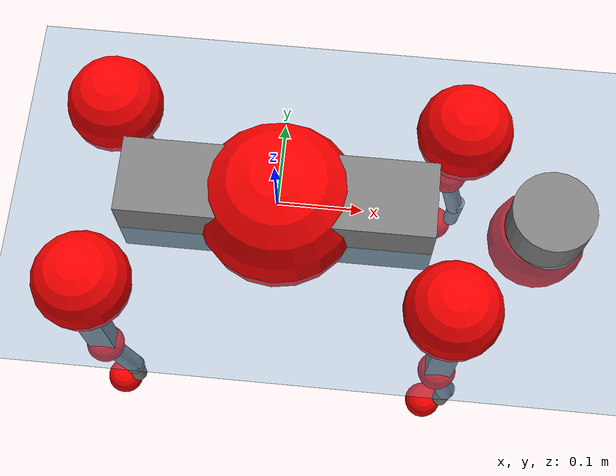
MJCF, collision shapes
<mujoco model="go2">
  <compiler angle="radian" assetdir="assets" balanceinertia="true" inertiafromgeom="false"/>

  <option timestep="0.005" density="1.2" viscosity="2e-05"/>

  <size nkey="1"/>

  <visual>
    <quality shadowsize="8192"/>
    <map shadowclip="0.5"/>
  </visual>

  <default>
    <default class="/">
      <geom contype="0" conaffinity="0" group="1" solref="-1000 -80"/>
      <site size="0.01 0.005 0.005" group="5"/>
      <general forcelimited="true" biastype="affine" gainprm="20" biasprm="0 -20 -0.5"/>
      <default class="go2">
        <joint armature="0.01" damping="0.01" frictionloss="0.2"/>
        <geom condim="1" margin="0.001"/>
        <default class="visual">
          <geom type="mesh" group="2"/>
        </default>
        <default class="collision">
          <geom group="3"/>
          <default class="foot">
            <geom size="0.022 0 0" condim="6" priority="1" friction="0.8 0.02 0.01" solimp="0.015 1 0.022"/>
          </default>
        </default>
        <default class="reward_collision_sphere">
          <geom group="5" rgba="1 0 0 1"/>
        </default>
      </default>
    </default>
  </default>

  <asset>
    <texture type="skybox" colorspace="auto" name="//unnamed_texture_0" builtin="gradient" rgb1="0.95 0.95 0.95" rgb2="0.95 0.95 0.95" width="100" height="600"/>
    <texture type="2d" colorspace="auto" name="texplane" builtin="checker" rgb1="0.345 0.575 0.748" rgb2="0.345 0.575 0.748" markrgb="1 1 1" width="512" height="512"/>
    <material name="MatPlane" class="/" texture="texplane" texuniform="true" texrepeat="2 2" specular="0.9"/>
    <material name="metal" class="/" rgba="0.9 0.95 0.95 1"/>
    <material name="black" class="/" rgba="0 0 0 1"/>
    <material name="white" class="/"/>
    <material name="gray" class="/" rgba="0.671705 0.692426 0.77427 1"/>
    <mesh name="base_0" class="/" file="base_0.obj"/>
    <mesh name="base_1" class="/" file="base_1.obj"/>
    <mesh name="base_2" class="/" file="base_2.obj"/>
    <mesh name="base_3" class="/" file="base_3.obj"/>
    <mesh name="base_4" class="/" file="base_4.obj"/>
    <mesh name="hip_0" class="/" file="hip_0.obj"/>
    <mesh name="hip_1" class="/" file="hip_1.obj"/>
    <mesh name="thigh_0" class="/" file="thigh_0.obj"/>
    <mesh name="thigh_1" class="/" file="thigh_1.obj"/>
    <mesh name="thigh_mirror_0" class="/" file="thigh_mirror_0.obj"/>
    <mesh name="thigh_mirror_1" class="/" file="thigh_mirror_1.obj"/>
    <mesh name="calf_0" class="/" file="calf_0.obj"/>
    <mesh name="calf_1" class="/" file="calf_1.obj"/>
    <mesh name="calf_mirror_0" class="/" file="calf_mirror_0.obj"/>
    <mesh name="calf_mirror_1" class="/" file="calf_mirror_1.obj"/>
    <mesh name="foot" class="/" file="foot.obj"/>
  </asset>

  <worldbody>
    <geom name="floor" class="/" size="100 100 0.125" type="plane" group="0" material="MatPlane"/>
    <light name="toplight_shadow" class="/" pos="0 0 5" dir="0.0990148 0.0990148 -0.990148" type="directional" ambient="0.04 0.04 0.04" diffuse="0.55 0.55 0.55" specular="0.12 0.12 0.12"/>
    <light name="toplight_fill" class="/" pos="0 0 5" dir="0.0990148 0.0990148 -0.990148" type="directional" castshadow="false" ambient="0.04 0.04 0.04" diffuse="0.3 0.3 0.3" specular="0.08 0.08 0.08"/>
    <body name="trunk" childclass="go2" pos="0.00198551 -0.000996201 -0.000523379" quat="1 0.000296784 -9.57427e-06 0.000183229">
      <inertial pos="0.0229829 -0.00061561 -0.00463979" quat="-0.000403309 0.713268 -0.00353692 0.700883" mass="6.17059" diaginertia="0.176793 0.0849424 0.00981519"/>
      <joint name="//unnamed_joint_0" type="free" armature="0" damping="0" frictionloss="0"/>
      <geom name="//unnamed_geom_1" class="visual" material="black" mesh="base_0"/>
      <geom name="//unnamed_geom_2" class="visual" material="black" mesh="base_1"/>
      <geom name="//unnamed_geom_3" class="visual" material="black" mesh="base_2"/>
      <geom name="//unnamed_geom_4" class="visual" material="white" mesh="base_3"/>
      <geom name="//unnamed_geom_5" class="visual" material="gray" mesh="base_4"/>
      <geom name="trunk_1" class="collision" size="0.1816 0.0451345 0.0550303" type="box"/>
      <geom name="trunk_2" class="collision" size="0.0482722 0.043445" pos="0.312342 0 0.00832584" type="cylinder"/>
      <geom name="trunk_3" class="collision" size="0.0453759" pos="0.321109 0 -0.049955"/>
      <geom name="//unnamed_geom_9" class="reward_collision_sphere" size="0.0965445"/>
      <geom name="//unnamed_geom_10" class="reward_collision_sphere" size="0.0579267" pos="0.306862 0 -0.0374663"/>
      <site name="imu" pos="-0.0324339 -0.00131457 0.0233192" size="0.00965445"/>
      <camera name="track" pos="0 -1.93563 0" quat="0.707107 0.707107 0 0" mode="trackcom"/>
      <camera name="ego_camera" pos="0.341932 0 0.0374663" quat="-0.5 -0.5 0.5 0.5"/>
      <body name="FL_hip" pos="0.212329 0.0456643 0.000508229" quat="1 -0.000459398 0.000585717 3.52124e-05">
        <inertial pos="-0.00799927 0.00297366 0.000117563" quat="0.497013 0.499219 0.505484 0.498241" mass="0.613204" diaginertia="0.00140344 0.000500069 0.000190853"/>
        <joint name="FL_hip_joint" pos="0 0 0" axis="0.999897 0.0135715 -0.00475406" range="-1.06061 1.04967" armature="0.00848796" damping="0.00671382" frictionloss="0.187298"/>
        <geom name="//unnamed_geom_11" class="visual" material="metal" mesh="hip_0"/>
        <geom name="//unnamed_geom_12" class="visual" material="gray" mesh="hip_1"/>
        <geom name="//unnamed_geom_13" class="collision" size="0.0444104 0.0193089" pos="0 0.0774251 0" quat="0.707107 0.707107 0 0" type="cylinder"/>
        <geom name="//unnamed_geom_14" class="reward_collision_sphere" size="0.0579267" pos="0 0.067747 0"/>
        <body name="FL_thigh" pos="-0.000998495 0.0929188 0.000836047" quat="1 0.00023389 -0.000236406 6.92669e-05">
          <inertial pos="-0.00479356 -0.0213737 -0.029522" quat="0.831136 0.0823252 -0.0200701 0.549575" mass="1.05421" diaginertia="0.00951738 0.00502548 0.000356603"/>
          <joint name="FL_thigh_joint" pos="0 0 0" axis="0.00106771 0.999966 -0.00822295" range="-1.58898 3.49127" armature="0.0104737" damping="0.00287735" frictionloss="0.194197"/>
          <geom name="//unnamed_geom_15" class="visual" material="metal" mesh="thigh_0"/>
          <geom name="//unnamed_geom_16" class="visual" material="gray" mesh="thigh_1"/>
          <geom name="//unnamed_geom_17" class="collision" size="0.10282 0.0118267 0.0164126" pos="0 0 -0.0886701" quat="0.707107 0 0.707107 0" type="box"/>
          <body name="FL_calf" pos="-0.000408877 -0.00292524 -0.177435" quat="1 0.000365925 -0.000161224 -2.18286e-05">
            <inertial pos="0.00652357 -0.000167131 -0.117817" quat="0.706498 0.0101495 -0.000341576 0.707642" mass="0.217569" diaginertia="0.0023248 0.00124423 2.08343e-05"/>
            <joint name="FL_calf_joint" pos="0 0 0" axis="-0.0120667 0.999926 -0.00136835" stiffness="0.00275836" range="-2.72065 -0.839272" armature="0.00962886" damping="0.000132799" frictionloss="0.198384"/>
            <geom name="//unnamed_geom_18" class="visual" material="gray" mesh="calf_0"/>
            <geom name="//unnamed_geom_19" class="visual" material="black" mesh="calf_1"/>
            <geom name="FL_calf0" class="collision" size="0.0115853 0.0579267" pos="0.00876749 0 -0.049955" quat="0.994493 0 -0.104807 0" type="cylinder"/>
            <geom name="//unnamed_geom_21" class="collision" size="0.0106199 0.0313769" pos="0.0219187 0 -0.123222" quat="0.999688 0 0.0249974 0" type="cylinder"/>
            <geom name="//unnamed_geom_22" class="visual" pos="0 0 -0.17734" quat="1 0 0 0" material="black" mesh="foot"/>
            <geom name="FL_foot" class="foot" size="0.0188501" pos="-0.00219187 0 -0.17734"/>
            <geom name="//unnamed_geom_24" class="reward_collision_sphere" size="0.0241361"/>
            <geom name="//unnamed_geom_25" class="reward_collision_sphere" size="0.0241361" pos="-0.00219187 0 -0.17734"/>
            <site name="FL_foot" class="foot" pos="-0.00219187 0 -0.17734" size="0.00965445"/>
          </body>
        </body>
      </body>
      <body name="FR_hip" pos="0.210205 -0.042183 -0.00156523" quat="1 4.60171e-05 -2.27575e-05 -6.64874e-05">
        <inertial pos="-0.00328837 -0.00275263 -0.00261351" quat="0.498779 0.505321 0.498926 0.496934" mass="0.629414" diaginertia="0.00143058 0.000517967 0.000197313"/>
        <joint name="FR_hip_joint" pos="0 0 0" axis="0.99997 -0.00327973 0.00705478" stiffness="0.0026075" range="-1.09417 1.06018" armature="0.00971803" damping="0.0148184" frictionloss="0.177492"/>
        <geom name="//unnamed_geom_26" class="visual" pos="0 1.17807e-09 5.05298e-08" quat="4.63268e-05 1 0 0" material="metal" mesh="hip_0"/>
        <geom name="//unnamed_geom_27" class="visual" pos="0 1.90979e-09 -1.2498e-07" quat="4.63268e-05 1 0 0" material="gray" mesh="hip_1"/>
        <geom name="//unnamed_geom_28" class="collision" size="0.0444104 0.0193089" pos="0 -0.0774251 0" quat="0.707107 0.707107 0 0" type="cylinder"/>
        <geom name="//unnamed_geom_29" class="reward_collision_sphere" size="0.0579267" pos="0 -0.067747 0"/>
        <body name="FR_thigh" pos="0.00070438 -0.0928554 0.000458879" quat="1 7.65177e-06 5.51587e-06 5.1374e-07">
          <inertial pos="-0.00307695 0.0242832 -0.0280449" quat="0.551631 -0.0200079 0.084764 0.829529" mass="1.02279" diaginertia="0.00936463 0.00489766 0.00034684"/>
          <joint name="FR_thigh_joint" pos="0 0 0" axis="-0.00137764 -0.999999 0.000962995" range="-3.49949 1.55697" armature="0.0101331" damping="0.00944081" frictionloss="0.190303"/>
          <geom name="//unnamed_geom_30" class="visual" material="metal" mesh="thigh_mirror_0"/>
          <geom name="//unnamed_geom_31" class="visual" material="gray" mesh="thigh_mirror_1"/>
          <geom name="//unnamed_geom_32" class="collision" size="0.10282 0.0118267 0.0164126" pos="0 0 -0.0886701" quat="0.707107 0 0.707107 0" type="box"/>
          <body name="FR_calf" pos="-0.000331143 -0.000779734 -0.175557" quat="0.999999 0.00111935 -2.53021e-06 -0.000450423">
            <inertial pos="0.00947117 0.000419113 -0.11645" quat="0.70345 -0.00391081 0.001021 0.710733" mass="0.212406" diaginertia="0.00233777 0.00126843 2.18787e-05"/>
            <joint name="FR_calf_joint" pos="0 0 0" axis="0.00263044 -0.999991 -0.00339307" stiffness="0.00437228" range="0.789057 2.71386" armature="0.00979673" damping="0.0195411" frictionloss="0.211518"/>
            <geom name="//unnamed_geom_33" class="visual" material="gray" mesh="calf_mirror_0"/>
            <geom name="//unnamed_geom_34" class="visual" material="black" mesh="calf_mirror_1"/>
            <geom name="FR_calf0" class="collision" size="0.0125508 0.0579267" pos="0.0109594 0 -0.049955" quat="0.995004 0 -0.0998334 0" type="cylinder"/>
            <geom name="//unnamed_geom_36" class="collision" size="0.0106199 0.0313769" pos="0.0219187 0 -0.123222" quat="0.999688 0 0.0249974 0" type="cylinder"/>
            <geom name="//unnamed_geom_37" class="visual" pos="0 0 -0.17734" quat="1 0 0 0" material="black" mesh="foot"/>
            <geom name="FR_foot" class="foot" size="0.0218128" pos="-0.00219187 0 -0.17734"/>
            <geom name="//unnamed_geom_39" class="reward_collision_sphere" size="0.0241361"/>
            <geom name="//unnamed_geom_40" class="reward_collision_sphere" size="0.0241361" pos="-0.00219187 0 -0.17734"/>
            <site name="FR_foot" class="foot" pos="-0.00219187 0 -0.17734" size="0.00965445"/>
          </body>
        </body>
      </body>
      <body name="RL_hip" pos="-0.209646 0.0439015 0.00118319" quat="1 -3.6058e-05 -4.00561e-05 1.37906e-05">
        <inertial pos="0.00818348 -0.000354892 -0.000295858" quat="0.505811 0.505485 0.494205 0.494371" mass="0.614873" diaginertia="0.00141222 0.000506134 0.000187791"/>
        <joint name="RL_hip_joint" pos="0 0 0" axis="-0.999947 0.00947417 -0.00410955" stiffness="0.000787473" range="-1.0351 1.02422" armature="0.00969949" damping="0.00735118" frictionloss="0.203203"/>
        <geom name="//unnamed_geom_41" class="visual" pos="-2.29422e-09 0 -4.4972e-07" quat="4.63268e-05 0 1 0" material="metal" mesh="hip_0"/>
        <geom name="//unnamed_geom_42" class="visual" pos="-3.71921e-09 0 -3.98838e-07" quat="4.63268e-05 0 1 0" material="gray" mesh="hip_1"/>
        <geom name="//unnamed_geom_43" class="collision" size="0.0444104 0.0193089" pos="0 0.0774251 0" quat="0.707107 0.707107 0 0" type="cylinder"/>
        <geom name="//unnamed_geom_44" class="reward_collision_sphere" size="0.0579267" pos="0 0.067747 0"/>
        <body name="RL_thigh" pos="-2.07121e-05 0.0915699 0.000461892" quat="1 -0.000426356 -0.000192346 0.000151882">
          <inertial pos="-0.00447471 -0.0190423 -0.0268076" quat="0.831671 0.0873947 -0.0164946 0.548099" mass="1.04168" diaginertia="0.00944167 0.00504174 0.000344214"/>
          <joint name="RL_thigh_joint" pos="0 0 0" axis="-0.00341151 0.999969 -0.00709528" range="-0.511758 4.53729" armature="0.0107547" damping="0.00264823" frictionloss="0.209322"/>
          <geom name="//unnamed_geom_45" class="visual" material="metal" mesh="thigh_0"/>
          <geom name="//unnamed_geom_46" class="visual" material="gray" mesh="thigh_1"/>
          <geom name="//unnamed_geom_47" class="collision" size="0.10282 0.0118267 0.0164126" pos="0 0 -0.0886701" quat="0.707107 0 0.707107 0" type="box"/>
          <body name="RL_calf" pos="-0.000600881 0.00134465 -0.179822" quat="0.999999 -0.000212256 0.000697223 0.000926847">
            <inertial pos="0.00749574 -0.000335639 -0.115113" quat="0.711176 0.000171321 -0.00435567 0.703001" mass="0.211064" diaginertia="0.0023556 0.00125261 2.1191e-05"/>
            <joint name="RL_calf_joint" pos="0 0 0" axis="0.00207376 0.999997 0.00137689" stiffness="0.000604183" range="-2.73356 -0.844965" armature="0.00934936" damping="0.00867837" frictionloss="0.180975"/>
            <geom name="//unnamed_geom_48" class="visual" material="gray" mesh="calf_0"/>
            <geom name="//unnamed_geom_49" class="visual" material="black" mesh="calf_1"/>
            <geom name="RL_calf0" class="collision" size="0.0125508 0.0579267" pos="0.0109594 0 -0.049955" quat="0.995004 0 -0.0998334 0" type="cylinder"/>
            <geom name="//unnamed_geom_51" class="collision" size="0.0106199 0.0313769" pos="0.0219187 0 -0.123222" quat="0.999688 0 0.0249974 0" type="cylinder"/>
            <geom name="//unnamed_geom_52" class="visual" pos="0 0 -0.17734" quat="1 0 0 0" material="black" mesh="foot"/>
            <geom name="RL_foot" class="foot" size="0.0176315" pos="-0.00219187 0 -0.17734"/>
            <geom name="//unnamed_geom_54" class="reward_collision_sphere" size="0.0241361"/>
            <geom name="//unnamed_geom_55" class="reward_collision_sphere" size="0.0241361" pos="-0.00219187 0 -0.17734"/>
            <site name="RL_foot" class="foot" pos="-0.00219187 0 -0.17734" size="0.00965445"/>
          </body>
        </body>
      </body>
      <body name="RR_hip" pos="-0.214151 -0.0465099 -0.000245748" quat="1 0.000107845 0.000182033 -0.000444751">
        <inertial pos="0.0065587 -0.00221803 -0.00031264" quat="0.489418 0.500087 0.503768 0.506558" mass="0.61189" diaginertia="0.00139879 0.000509763 0.000192938"/>
        <joint name="RR_hip_joint" pos="0 0 0" axis="-0.999917 0.00260594 0.0126099" stiffness="0.00383479" range="-1.04735 1.02722" armature="0.0100554" damping="0.000850601" frictionloss="0.190359"/>
        <geom name="//unnamed_geom_56" class="visual" pos="2.28979e-09 1.17807e-09 -5.0025e-07" quat="2.14617e-09 4.63268e-05 4.63268e-05 -1" material="metal" mesh="hip_0"/>
        <geom name="//unnamed_geom_57" class="visual" pos="3.73018e-09 1.90979e-09 -2.73858e-07" quat="2.14617e-09 4.63268e-05 4.63268e-05 -1" material="gray" mesh="hip_1"/>
        <geom name="//unnamed_geom_58" class="collision" size="0.0444104 0.0193089" pos="0 -0.0774251 0" quat="0.707107 0.707107 0 0" type="cylinder"/>
        <geom name="//unnamed_geom_59" class="reward_collision_sphere" size="0.0579267" pos="0 -0.067747 0"/>
        <body name="RR_thigh" pos="0.000411293 -0.0918607 0.000707144" quat="1 0.000231276 -6.74473e-05 0.000110202">
          <inertial pos="-0.00452578 0.0212154 -0.0282002" quat="0.549161 -0.0252181 0.096017 0.829799" mass="1.04154" diaginertia="0.00934391 0.00503695 0.000361213"/>
          <joint name="RR_thigh_joint" pos="0 0 0" axis="0.00136589 -0.999999 4.69687e-05" range="-4.53955 0.504052" armature="0.0103697" damping="0.00834663" frictionloss="0.198417"/>
          <geom name="//unnamed_geom_60" class="visual" material="metal" mesh="thigh_mirror_0"/>
          <geom name="//unnamed_geom_61" class="visual" material="gray" mesh="thigh_mirror_1"/>
          <geom name="//unnamed_geom_62" class="collision" size="0.10282 0.0118267 0.0164126" pos="0 0 -0.0886701" quat="0.707107 0 0.707107 0" type="box"/>
          <body name="RR_calf" pos="0.000552812 -0.00144122 -0.177976" quat="1 -6.43561e-05 -2.19082e-05 -0.000118709">
            <inertial pos="0.00482452 -0.00179951 -0.115615" quat="0.702213 -0.00334663 0.00101625 0.711959" mass="0.220248" diaginertia="0.00232517 0.00126213 2.11711e-05"/>
            <joint name="RR_calf_joint" pos="0 0 0" axis="0.00535086 -0.999973 0.00499594" stiffness="0.00192528" range="0.859293 2.7716" armature="0.00957673" damping="0.0104358" frictionloss="0.215657"/>
            <geom name="//unnamed_geom_63" class="visual" material="gray" mesh="calf_mirror_0"/>
            <geom name="//unnamed_geom_64" class="visual" material="black" mesh="calf_mirror_1"/>
            <geom name="RR_calf0" class="collision" size="0.0125508 0.0579267" pos="0.0109594 0 -0.049955" quat="0.995004 0 -0.0998334 0" type="cylinder"/>
            <geom name="//unnamed_geom_66" class="collision" size="0.0106199 0.0313769" pos="0.0219187 0 -0.123222" quat="0.999688 0 0.0249974 0" type="cylinder"/>
            <geom name="//unnamed_geom_67" class="visual" pos="0 0 -0.17734" quat="1 0 0 0" material="black" mesh="foot"/>
            <geom name="RR_foot" class="foot" size="0.0229656" pos="-0.00219187 0 -0.17734"/>
            <geom name="//unnamed_geom_69" class="reward_collision_sphere" size="0.0241361"/>
            <geom name="//unnamed_geom_70" class="reward_collision_sphere" size="0.0241361" pos="-0.00219187 0 -0.17734"/>
            <site name="RR_foot" class="foot" pos="-0.00219187 0 -0.17734" size="0.00965445"/>
          </body>
        </body>
      </body>
    </body>
  </worldbody>

  <contact>
    <pair class="/" geom1="floor" geom2="FL_foot" name="//unnamed_contact_0"/>
    <pair class="/" geom1="floor" geom2="FR_foot" name="//unnamed_contact_1"/>
    <pair class="/" geom1="floor" geom2="RL_foot" name="//unnamed_contact_2"/>
    <pair class="/" geom1="floor" geom2="RR_foot" name="//unnamed_contact_3"/>
  </contact>

  <actuator>
    <general name="FL_hip" class="/" joint="FL_hip_joint" forcerange="-22.9039 22.9039" gainprm="19.4921" biasprm="0 -19.4921 -0.472078"/>
    <general name="FL_thigh" class="/" joint="FL_thigh_joint" forcerange="-21.4878 21.4878" gainprm="19.4921" biasprm="0 -19.4921 -0.472078"/>
    <general name="FL_calf" class="/" joint="FL_calf_joint" forcerange="-42.8148 42.8148" gainprm="19.4921" biasprm="0 -19.4921 -0.472078"/>
    <general name="FR_hip" class="/" joint="FR_hip_joint" forcerange="-22.88 22.88" gainprm="19.4921" biasprm="0 -19.4921 -0.472078"/>
    <general name="FR_thigh" class="/" joint="FR_thigh_joint" forcerange="-23.2497 23.2497" gainprm="19.4921" biasprm="0 -19.4921 -0.472078"/>
    <general name="FR_calf" class="/" joint="FR_calf_joint" forcerange="-44.6065 44.6065" gainprm="19.4921" biasprm="0 -19.4921 -0.472078"/>
    <general name="RL_hip" class="/" joint="RL_hip_joint" forcerange="-23.0093 23.0093" gainprm="19.4921" biasprm="0 -19.4921 -0.472078"/>
    <general name="RL_thigh" class="/" joint="RL_thigh_joint" forcerange="-23.2091 23.2091" gainprm="19.4921" biasprm="0 -19.4921 -0.472078"/>
    <general name="RL_calf" class="/" joint="RL_calf_joint" forcerange="-44.8389 44.8389" gainprm="19.4921" biasprm="0 -19.4921 -0.472078"/>
    <general name="RR_hip" class="/" joint="RR_hip_joint" forcerange="-22.5177 22.5177" gainprm="19.4921" biasprm="0 -19.4921 -0.472078"/>
    <general name="RR_thigh" class="/" joint="RR_thigh_joint" forcerange="-21.9931 21.9931" gainprm="19.4921" biasprm="0 -19.4921 -0.472078"/>
    <general name="RR_calf" class="/" joint="RR_calf_joint" forcerange="-39.8673 39.8673" gainprm="19.4921" biasprm="0 -19.4921 -0.472078"/>
  </actuator>

  <sensor>
    <gyro site="imu" name="imu_angular_velocity"/>
    <velocimeter site="imu" name="imu_linear_velocity"/>
    <framelinvel objtype="site" objname="FL_foot" name="FL_foot_global_linear_velocity"/>
    <framelinvel objtype="site" objname="FR_foot" name="FR_foot_global_linear_velocity"/>
    <framelinvel objtype="site" objname="RL_foot" name="RL_foot_global_linear_velocity"/>
    <framelinvel objtype="site" objname="RR_foot" name="RR_foot_global_linear_velocity"/>
  </sensor>

  <keyframe>
    <key name="home" qpos="0 0 0.325 1 0 0 0 0.1 0.8 -1.5 -0.1 -0.8 1.5 -0.1 0.8 -1.5 0.1 -0.8 1.5"/>
  </keyframe>
</mujoco>
